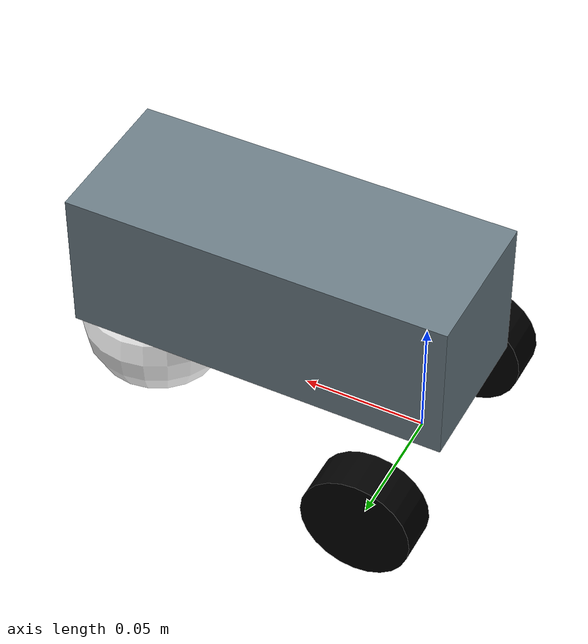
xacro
<?xml version="1.0"?>
<robot xmlns:xacro="http://www.ros.org/wiki/xacro">

    <xacro:include filename="inertial_macros.xacro"/>

    <material name="grey">
        <color rgba="0.4196078431372549 0.48627450980392156 0.5215686274509804 1.0"/>
    </material>

    <material name="orange">
        <color rgba="1 0.3 0.1 1"/>
    </material>

    <material name="black">
        <color rgba="0 0 0 1"/>
    </material>

    <material name="white">
        <color rgba="1 1 1 1"/>
    </material>

    <material name="red">
        <color rgba="0.8980392156862745 0.0 0.0 1.0"/>
    </material>

    <material name="gold">
        <color rgba="0.8588235294117647 0.7058823529411765 0.047058823529411764 1.0"/>
    </material>

      <!-- BASE LINK-->
    <link name="base_link">

    </link>

     <!-- BASE_FOOTPRINT LINK -->
    <joint name="base_footprint_joint" type="fixed">
        <parent link="base_link"/>
        <child link="base_footprint"/>
        <origin xyz="0 0 -0.02961" rpy="0 0 0"/>
    </joint>

    <link name="base_footprint">
    </link>

    <!-- CHASSIS LINK-->
    <joint name="Chassis_joint" type="fixed">
        <parent link="base_link"/>
        <child link="chassis"/>
        <origin xyz="-0.02065 0 0.00792"/>
    </joint>

    <link name="chassis">
        <visual>
        <origin xyz="0.078185 0 0.0458"/>
            <geometry>
                <box size="0.15637 0.062 0.060"/>
            </geometry>
            <material name="grey"></material>
        </visual>
        <collision>
        <origin xyz="0.078185 0 0.0458"/>
            <geometry>
                <box size="0.15637 0.062 0.060"/>
            </geometry>
        </collision>
        <xacro:inertial_box mass="0.567" x="0.15637" y="0.062" z="0.060">
            <origin xyz="0.078185 0 0.0458" rpy="0 0 0"/>
        </xacro:inertial_box>
    </link>

    <!-- Left Wheel-->
    <joint name="left_wheel_joint" type="continuous">
        <parent link="base_link"/>
        <child link="left_wheel"/>
        <origin xyz="0 0.051115 0" rpy="-${pi/2} 0 0"/>
        <axis xyz="0.0 0.0 1"/>
    </joint>

    <link name="left_wheel">
        <visual>
            <geometry>
                <cylinder radius="0.0225" length="0.01775"/>
            </geometry>
            <material name="black"></material>
        </visual>
        <collision>
            <geometry>
                <cylinder radius="0.0225" length="0.01775"/>
            </geometry>
        </collision>
        <xacro:inertial_cylinder mass="0.01622" length="0.01775" radius="0.0215">
            <origin xyz="0 0 0" rpy="0 0 0"/>
        </xacro:inertial_cylinder>
    </link>

    <!-- Right Wheel-->
    <joint name="right_wheel_joint" type="continuous">
        <parent link="base_link"/>
        <child link="right_wheel"/>
        <origin xyz="0 -0.051115 0" rpy="${pi/2} 0 0"/>
        <axis xyz="0.0 0.0 -1"/>
    </joint>

    <link name="right_wheel">
        <visual>
            <geometry>
                <cylinder radius="0.0225" length="0.01775"/>
            </geometry>
            <material name="black"></material>
        </visual>
        <collision>
            <geometry>
                <cylinder radius="0.0225" length="0.01775"/>
            </geometry>
        </collision>
        <xacro:inertial_cylinder mass="0.01622" length="0.01775" radius="0.0215">
            <origin xyz="0 0 0" rpy="0 0 0"/>
        </xacro:inertial_cylinder>
    </link>

    <!-- Caster Wheel-->
    <joint name="caster_wheel_joint" type="fixed">
        <parent link="chassis"/>
        <child link="caster_wheel"/>
        <origin xyz="0.13737 0 0"/>
    </joint>

    <link name="caster_wheel">
        <visual>
                <geometry>
                    <sphere radius="0.03054"/>
                </geometry>
            <material name="white"></material>
        </visual>
        <collision>
                <geometry>
                    <sphere radius="0.03054"/>
                </geometry>
        </collision>
        <xacro:inertial_sphere mass="0.01" radius="0.03054">
            <origin xyz="0 0 0" rpy="0 0 0"/>
        </xacro:inertial_sphere >
    </link>

</robot>
